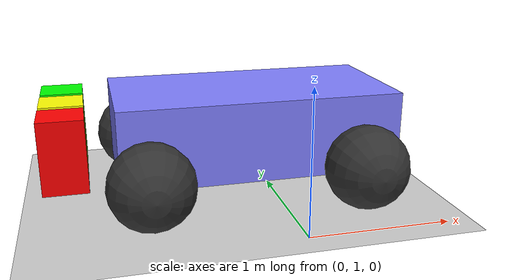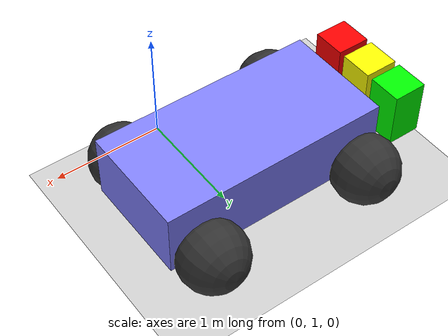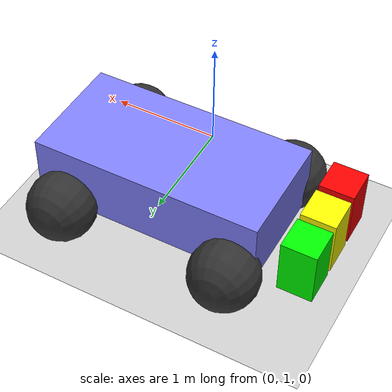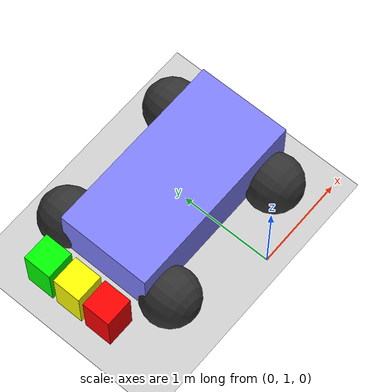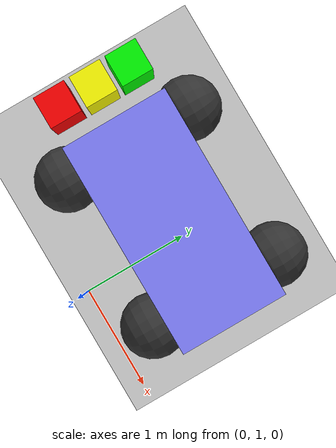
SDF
<?xml version="1.0" ?>

<sdf version="1.6">
  <world name="detachable_joint">

    <physics name="1ms" type="ignored">
      <max_step_size>0.001</max_step_size>
      <real_time_factor>1.0</real_time_factor>
    </physics>
    <plugin
      filename="gz-sim-physics-system"
      name="gz::sim::systems::Physics">
    </plugin>
    <plugin
      filename="gz-sim-user-commands-system"
      name="gz::sim::systems::UserCommands">
    </plugin>
    <plugin
      filename="gz-sim-scene-broadcaster-system"
      name="gz::sim::systems::SceneBroadcaster">
    </plugin>

    <light type="directional" name="sun">
      <cast_shadows>true</cast_shadows>
      <pose>0 0 10 0 0 0</pose>
      <diffuse>1 1 1 1</diffuse>
      <specular>0.5 0.5 0.5 1</specular>
      <attenuation>
        <range>1000</range>
        <constant>0.9</constant>
        <linear>0.01</linear>
        <quadratic>0.001</quadratic>
      </attenuation>
      <direction>-0.5 0.1 -0.9</direction>
    </light>

    <model name="ground_plane">
      <static>true</static>
      <link name="link">
        <collision name="collision">
          <geometry>
            <plane>
              <normal>0 0 1</normal>
              <size>100 100</size>
            </plane>
          </geometry>
        </collision>
        <visual name="visual">
          <geometry>
            <plane>
              <normal>0 0 1</normal>
              <size>100 100</size>
            </plane>
          </geometry>
          <material>
            <ambient>0.8 0.8 0.8 1</ambient>
            <diffuse>0.8 0.8 0.8 1</diffuse>
            <specular>0.8 0.8 0.8 1</specular>
          </material>
        </visual>
      </link>
    </model>

    <model name='vehicle_blue'>
      <pose>0 2 0.325 0 -0 0</pose>
      <self_collide>true</self_collide>

      <link name='chassis'>
        <pose>-0.151427 -0 0.175 0 -0 0</pose>
        <inertial>
          <mass>1.14395</mass>
          <inertia>
            <ixx>0.126164</ixx>
            <ixy>0</ixy>
            <ixz>0</ixz>
            <iyy>0.416519</iyy>
            <iyz>0</iyz>
            <izz>0.481014</izz>
          </inertia>
        </inertial>
        <visual name='visual'>
          <geometry>
            <box>
              <size>2.01142 1 0.568726</size>
            </box>
          </geometry>
          <material>
            <ambient>0.5 0.5 1.0 1</ambient>
            <diffuse>0.5 0.5 1.0 1</diffuse>
            <specular>0.0 0.0 1.0 1</specular>
          </material>
        </visual>
        <collision name='collision'>
          <geometry>
            <box>
              <size>2.01142 1 0.568726</size>
            </box>
          </geometry>
        </collision>
      </link>

      <link name='front_left_wheel'>
        <pose>0.554283 0.625029 -0.025 -1.5707 0 0</pose>
        <inertial>
          <mass>2</mass>
          <inertia>
            <ixx>0.145833</ixx>
            <ixy>0</ixy>
            <ixz>0</ixz>
            <iyy>0.145833</iyy>
            <iyz>0</iyz>
            <izz>0.125</izz>
          </inertia>
        </inertial>
        <visual name='visual'>
          <geometry>
            <sphere>
              <radius>0.3</radius>
            </sphere>
          </geometry>
          <material>
            <ambient>0.2 0.2 0.2 1</ambient>
            <diffuse>0.2 0.2 0.2 1</diffuse>
            <specular>0.2 0.2 0.2 1</specular>
          </material>
        </visual>
        <collision name='collision'>
          <geometry>
            <sphere>
              <radius>0.3</radius>
            </sphere>
          </geometry>
          <surface>
            <friction>
              <ode>
                <mu>1</mu>
                <mu2>1</mu2>
                <slip1>0.035</slip1>
                <slip2>0</slip2>
                <fdir1>0 0 1</fdir1>
              </ode>
              <bullet>
                <friction>1</friction>
                <friction2>1</friction2>
                <rolling_friction>0.1</rolling_friction>
              </bullet>
            </friction>
          </surface>
        </collision>
      </link>

      <link name='rear_left_wheel'>
        <pose>-0.957138 0.625029 -0.025 -1.5707 0 0</pose>
        <inertial>
          <mass>2</mass>
          <inertia>
            <ixx>0.145833</ixx>
            <ixy>0</ixy>
            <ixz>0</ixz>
            <iyy>0.145833</iyy>
            <iyz>0</iyz>
            <izz>0.125</izz>
          </inertia>
        </inertial>
        <visual name='visual'>
          <geometry>
            <sphere>
              <radius>0.3</radius>
            </sphere>
          </geometry>
          <material>
            <ambient>0.2 0.2 0.2 1</ambient>
            <diffuse>0.2 0.2 0.2 1</diffuse>
            <specular>0.2 0.2 0.2 1</specular>
          </material>
        </visual>
        <collision name='collision'>
          <geometry>
            <sphere>
              <radius>0.3</radius>
            </sphere>
          </geometry>
          <surface>
            <friction>
              <ode>
                <mu>1</mu>
                <mu2>1</mu2>
                <slip1>0.035</slip1>
                <slip2>0</slip2>
                <fdir1>0 0 1</fdir1>
              </ode>
              <bullet>
                <friction>1</friction>
                <friction2>1</friction2>
                <rolling_friction>0.1</rolling_friction>
              </bullet>
            </friction>
          </surface>
        </collision>
      </link>

      <link name='front_right_wheel'>
        <pose>0.554282 -0.625029 -0.025 -1.5707 0 0</pose>
        <inertial>
          <mass>2</mass>
          <inertia>
            <ixx>0.145833</ixx>
            <ixy>0</ixy>
            <ixz>0</ixz>
            <iyy>0.145833</iyy>
            <iyz>0</iyz>
            <izz>0.125</izz>
          </inertia>
        </inertial>
        <visual name='visual'>
          <geometry>
            <sphere>
              <radius>0.3</radius>
            </sphere>
          </geometry>
          <material>
            <ambient>0.2 0.2 0.2 1</ambient>
            <diffuse>0.2 0.2 0.2 1</diffuse>
            <specular>0.2 0.2 0.2 1</specular>
          </material>
        </visual>
        <collision name='collision'>
          <geometry>
            <sphere>
              <radius>0.3</radius>
            </sphere>
          </geometry>
          <surface>
            <friction>
              <ode>
                <mu>1</mu>
                <mu2>1</mu2>
                <slip1>0.035</slip1>
                <slip2>0</slip2>
                <fdir1>0 0 1</fdir1>
              </ode>
              <bullet>
                <friction>1</friction>
                <friction2>1</friction2>
                <rolling_friction>0.1</rolling_friction>
              </bullet>
            </friction>
          </surface>
        </collision>
      </link>

      <link name='rear_right_wheel'>
        <pose>-0.957138 -0.625029 -0.025 -1.5707 0 0</pose>
        <inertial>
          <mass>2</mass>
          <inertia>
            <ixx>0.145833</ixx>
            <ixy>0</ixy>
            <ixz>0</ixz>
            <iyy>0.145833</iyy>
            <iyz>0</iyz>
            <izz>0.125</izz>
          </inertia>
        </inertial>
        <visual name='visual'>
          <geometry>
            <sphere>
              <radius>0.3</radius>
            </sphere>
          </geometry>
          <material>
            <ambient>0.2 0.2 0.2 1</ambient>
            <diffuse>0.2 0.2 0.2 1</diffuse>
            <specular>0.2 0.2 0.2 1</specular>
          </material>
        </visual>
        <collision name='collision'>
          <geometry>
            <sphere>
              <radius>0.3</radius>
            </sphere>
          </geometry>
          <surface>
            <friction>
              <ode>
                <mu>1</mu>
                <mu2>1</mu2>
                <slip1>0.035</slip1>
                <slip2>0</slip2>
                <fdir1>0 0 1</fdir1>
              </ode>
              <bullet>
                <friction>1</friction>
                <friction2>1</friction2>
                <rolling_friction>0.1</rolling_friction>
              </bullet>
            </friction>
          </surface>
        </collision>
      </link>

      <joint name='front_left_wheel_joint' type='revolute'>
        <parent>chassis</parent>
        <child>front_left_wheel</child>
        <axis>
          <xyz>0 0 1</xyz>
          <limit>
            <lower>-1.79769e+308</lower>
            <upper>1.79769e+308</upper>
          </limit>
        </axis>
      </joint>

      <joint name='front_right_wheel_joint' type='revolute'>
        <parent>chassis</parent>
        <child>front_right_wheel</child>
        <axis>
          <xyz>0 0 1</xyz>
          <limit>
            <lower>-1.79769e+308</lower>
            <upper>1.79769e+308</upper>
          </limit>
        </axis>
      </joint>

      <joint name='rear_left_wheel_joint' type='revolute'>
        <parent>chassis</parent>
        <child>rear_left_wheel</child>
        <axis>
          <xyz>0 0 1</xyz>
          <limit>
            <lower>-1.79769e+308</lower>
            <upper>1.79769e+308</upper>
          </limit>
        </axis>
      </joint>

      <joint name='rear_right_wheel_joint' type='revolute'>
        <parent>chassis</parent>
        <child>rear_right_wheel</child>
        <axis>
          <xyz>0 0 1</xyz>
          <limit>
            <lower>-1.79769e+308</lower>
            <upper>1.79769e+308</upper>
          </limit>
        </axis>
      </joint>

      <plugin
        filename="gz-sim-diff-drive-system"
        name="gz::sim::systems::DiffDrive">
        <left_joint>front_left_wheel_joint</left_joint>
        <left_joint>rear_left_wheel_joint</left_joint>
        <right_joint>front_right_wheel_joint</right_joint>
        <right_joint>rear_right_wheel_joint</right_joint>
        <wheel_separation>1.25</wheel_separation>
        <wheel_radius>0.3</wheel_radius>
      </plugin>
      <plugin filename="gz-sim-detachable-joint-system"
              name="gz::sim::systems::DetachableJoint">
       <parent_link>chassis</parent_link>
       <child_model>B1</child_model>
       <child_link>body</child_link>
       <detach_topic>/B1/detach</detach_topic>
       <attach_topic>/B1/attach</attach_topic>
       <output_topic>/B1/state</output_topic>
      </plugin>
      <plugin filename="gz-sim-detachable-joint-system"
              name="gz::sim::systems::DetachableJoint">
       <parent_link>chassis</parent_link>
       <child_model>B2</child_model>
       <child_link>body</child_link>
       <detach_topic>/B2/detach</detach_topic>
       <attach_topic>/B2/attach</attach_topic>
       <output_topic>/B2/state</output_topic>
      </plugin>
      <plugin filename="gz-sim-detachable-joint-system"
              name="gz::sim::systems::DetachableJoint">
       <parent_link>chassis</parent_link>
       <child_model>B3</child_model>
       <child_link>body</child_link>
       <detach_topic>/B3/detach</detach_topic>
       <attach_topic>/B3/attach</attach_topic>
       <output_topic>/B3/state</output_topic>
      </plugin>
    </model>

    <model name="B1">
      <pose>-1.5 2.35 0.5 0 -0 0</pose>
      <link name='body'>
        <inertial>
          <mass>0.6</mass>
          <inertia>
            <ixx>0.017</ixx>
            <ixy>0</ixy>
            <ixz>0</ixz>
            <iyy>0.017</iyy>
            <iyz>0</iyz>
            <izz>0.009</izz>
          </inertia>
        </inertial>
        <visual name='visual'>
          <geometry>
            <box>
              <size>0.3 0.3 0.5</size>
            </box>
          </geometry>
          <material>
            <ambient>0.0 1.0 0.0 1</ambient>
            <diffuse>0.0 1.0 0.0 1</diffuse>
            <specular>0.5 0.5 0.5 1</specular>
          </material>
        </visual>
        <collision name='collision'>
          <geometry>
            <box>
              <size>0.3 0.3 0.5</size>
            </box>
          </geometry>
        </collision>
      </link>
    </model>
    <model name="B2">
      <pose>-1.5 2 0.5 0 -0 0</pose>
      <link name='body'>
        <inertial>
          <mass>0.6</mass>
          <inertia>
            <ixx>0.017</ixx>
            <ixy>0</ixy>
            <ixz>0</ixz>
            <iyy>0.017</iyy>
            <iyz>0</iyz>
            <izz>0.009</izz>
          </inertia>
        </inertial>
        <visual name='visual'>
          <geometry>
            <box>
              <size>0.3 0.3 0.5</size>
            </box>
          </geometry>
          <material>
            <ambient>1 1 0 1</ambient>
            <diffuse>1 1 0 1</diffuse>
            <specular>0.5 0.5 0.5 1</specular>
          </material>
        </visual>
        <collision name='collision'>
          <geometry>
            <box>
              <size>0.3 0.3 0.5</size>
            </box>
          </geometry>
        </collision>
      </link>
    </model>
    <model name="B3">
      <pose>-1.5 1.65 0.5 0 -0 0</pose>
      <link name='body'>
        <inertial>
          <mass>0.6</mass>
          <inertia>
            <ixx>0.017</ixx>
            <ixy>0</ixy>
            <ixz>0</ixz>
            <iyy>0.017</iyy>
            <iyz>0</iyz>
            <izz>0.009</izz>
          </inertia>
        </inertial>
        <visual name='visual'>
          <geometry>
            <box>
              <size>0.3 0.3 0.5</size>
            </box>
          </geometry>
          <material>
            <ambient>1.0 0.0 0.0 1</ambient>
            <diffuse>1.0 0.0 0.0 1</diffuse>
            <specular>0.5 0.5 0.5 1</specular>
          </material>
        </visual>
        <collision name='collision'>
          <geometry>
            <box>
              <size>0.3 0.3 0.5</size>
            </box>
          </geometry>
        </collision>
      </link>
  </model>
</world>
</sdf>
